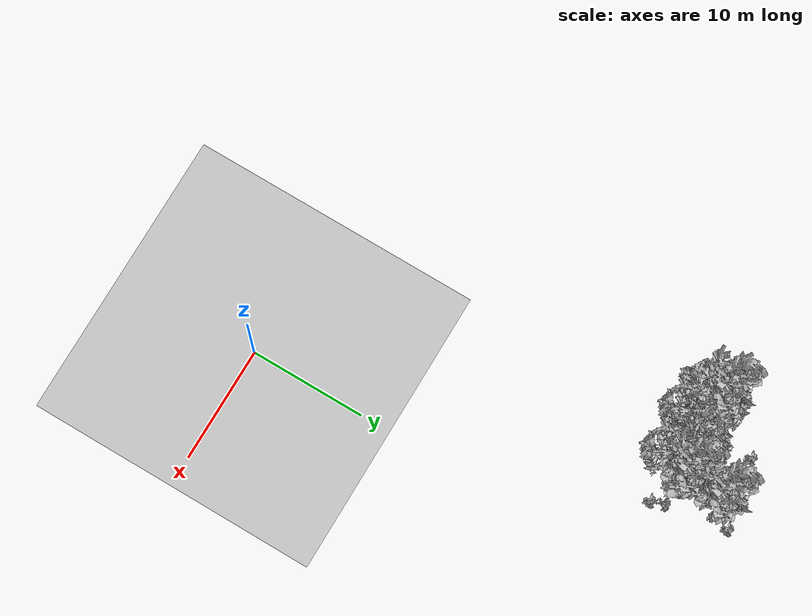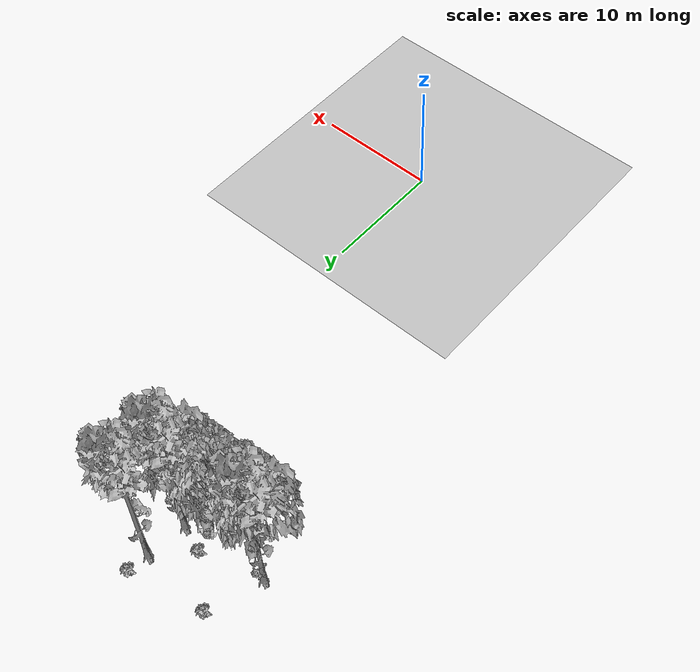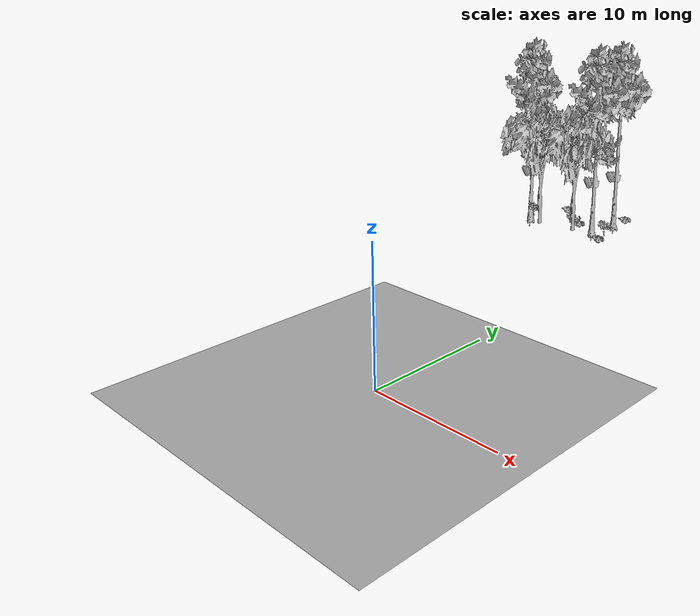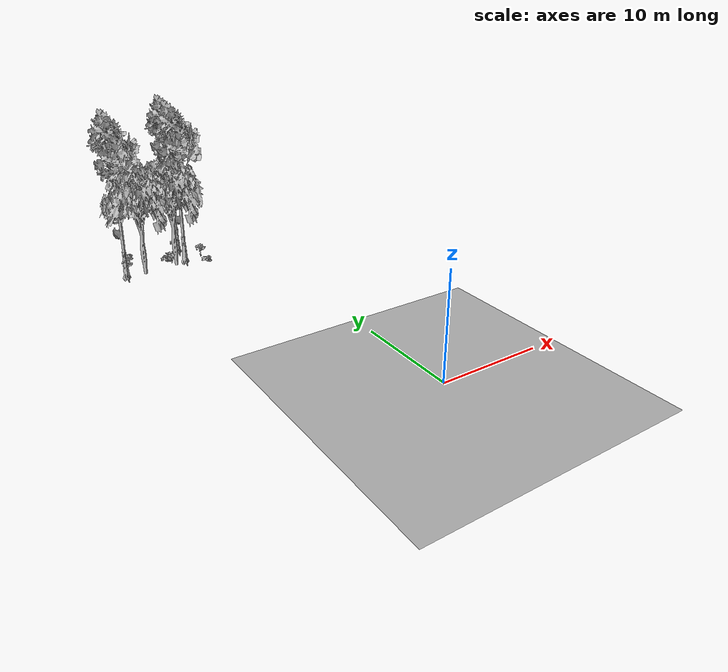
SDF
<sdf version="1.7">
 <world name="default">
  <model name="ground_plane">
   <static>1</static>
   <link name="link">
    <collision name="collision">
     <pose>-50 0 0 0 -0 0</pose>
     <geometry><plane><normal>0 0 1</normal><size>80 80</size></plane></geometry>
     <surface><contact><ode><min_depth>0.01</min_depth><max_vel>0</max_vel></ode></contact></surface>
    </collision>
    <visual name="grass">
     <cast_shadows>0</cast_shadows>
     <geometry>
      <mesh>
       <scale>0.46714285714285714 0.46714285714285714 0.1</scale>
       <uri>file://grass_plane/meshes/grass_plane.dae</uri>
      </mesh>
     </geometry>
    </visual>
   </link>
  </model>
  <model name="Tree 95">
   <static>1</static>
   <pose>-7.6605626062395125 34.817201030366704 0 1.57079 -0 0</pose>
   <link name="link">
    <collision name="collision">
     <geometry><mesh><scale>3.5 5 3.5</scale><uri>model://tree_9/meshes/tree_9.obj</uri></mesh></geometry>
    </collision>
    <visual name="visual">
     <geometry><mesh><scale>3.5 5 3.5</scale><uri>model://tree_9/meshes/tree_9.obj</uri></mesh></geometry>
    </visual>
   </link>
  </model>
  <model name="Tree 348">
   <static>1</static>
   <pose>-12.753537714318895 33.242959246885974 0 1.57079 -0 0</pose>
   <link name="link">
    <collision name="collision">
     <geometry><mesh><scale>3.5 5 3.5</scale><uri>model://tree_2/meshes/tree_2.obj</uri></mesh></geometry>
    </collision>
    <visual name="visual">
     <geometry><mesh><scale>3.5 5 3.5</scale><uri>model://tree_2/meshes/tree_2.obj</uri></mesh></geometry>
    </visual>
   </link>
  </model>
  <model name="Tree 367">
   <static>1</static>
   <pose>-14.457087193177394 34.1545571695556 0 1.57079 -0 0</pose>
   <link name="link">
    <collision name="collision">
     <geometry><mesh><scale>3.5 5 3.5</scale><uri>model://tree_9/meshes/tree_9.obj</uri></mesh></geometry>
    </collision>
    <visual name="visual">
     <geometry><mesh><scale>3.5 5 3.5</scale><uri>model://tree_9/meshes/tree_9.obj</uri></mesh></geometry>
    </visual>
   </link>
  </model>
  <model name="Tree 395">
   <static>1</static>
   <pose>-9.170375423383753 33.66462308272932 0 1.57079 -0 0</pose>
   <link name="link">
    <collision name="collision">
     <geometry><mesh><scale>3.5 5 3.5</scale><uri>model://tree_2/meshes/tree_2.obj</uri></mesh></geometry>
    </collision>
    <visual name="visual">
     <geometry><mesh><scale>3.5 5 3.5</scale><uri>model://tree_2/meshes/tree_2.obj</uri></mesh></geometry>
    </visual>
   </link>
  </model>
  <model name="Tree 500">
   <static>1</static>
   <pose>-7.2876599949074325 37.90536578268727 0 1.57079 -0 0</pose>
   <link name="link">
    <collision name="collision">
     <geometry><mesh><scale>3.5 5 3.5</scale><uri>model://tree_9/meshes/tree_9.obj</uri></mesh></geometry>
    </collision>
    <visual name="visual">
     <geometry><mesh><scale>3.5 5 3.5</scale><uri>model://tree_9/meshes/tree_9.obj</uri></mesh></geometry>
    </visual>
   </link>
  </model>
  <model name="Bush 9">
   <static>1</static>
   <pose>-14.190664253253772 34.36811682936843 0 1.57079 -0 0</pose>
   <link name="link">
    <collision name="collision">
     <geometry><mesh><scale>2 2 2</scale><uri>model://bush_5/meshes/bush_5.obj</uri></mesh></geometry>
     <surface><contact><collide_without_contact>false</collide_without_contact></contact></surface>
    </collision>
    <visual name="visual">
     <geometry><mesh><scale>2 2 2</scale><uri>model://bush_5/meshes/bush_5.obj</uri></mesh></geometry>
    </visual>
   </link>
  </model>
  <model name="Bush 44">
   <static>1</static>
   <pose>-12.946312828674877 38.26259945977934 0 1.57079 -0 0</pose>
   <link name="link">
    <collision name="collision">
     <geometry><mesh><scale>2 2 2</scale><uri>model://bush_2/meshes/bush_2.obj</uri></mesh></geometry>
     <surface><contact><collide_without_contact>false</collide_without_contact></contact></surface>
    </collision>
    <visual name="visual">
     <geometry><mesh><scale>2 2 2</scale><uri>model://bush_2/meshes/bush_2.obj</uri></mesh></geometry>
    </visual>
   </link>
  </model>
  <model name="Bush 178">
   <static>1</static>
   <pose>-5.97932043592639 34.34131509458817 0 1.57079 -0 0</pose>
   <link name="link">
    <collision name="collision">
     <geometry><mesh><scale>2 2 2</scale><uri>model://bush_5/meshes/bush_5.obj</uri></mesh></geometry>
     <surface><contact><collide_without_contact>false</collide_without_contact></contact></surface>
    </collision>
    <visual name="visual">
     <geometry><mesh><scale>2 2 2</scale><uri>model://bush_5/meshes/bush_5.obj</uri></mesh></geometry>
    </visual>
   </link>
  </model>
  <model name="Bush 205">
   <static>1</static>
   <pose>-7.022585486798825 39.4710683195072 0 1.57079 -0 0</pose>
   <link name="link">
    <collision name="collision">
     <geometry><mesh><scale>2 2 2</scale><uri>model://bush_2/meshes/bush_2.obj</uri></mesh></geometry>
     <surface><contact><collide_without_contact>false</collide_without_contact></contact></surface>
    </collision>
    <visual name="visual">
     <geometry><mesh><scale>2 2 2</scale><uri>model://bush_2/meshes/bush_2.obj</uri></mesh></geometry>
    </visual>
   </link>
  </model>
  <model name="Bush 227">
   <static>1</static>
   <pose>-9.389507830271086 34.31837629280287 0 1.57079 -0 0</pose>
   <link name="link">
    <collision name="collision">
     <geometry><mesh><scale>2 2 2</scale><uri>model://bush_0/meshes/bush_0.obj</uri></mesh></geometry>
     <surface><contact><collide_without_contact>false</collide_without_contact></contact></surface>
    </collision>
    <visual name="visual">
     <geometry><mesh><scale>2 2 2</scale><uri>model://bush_0/meshes/bush_0.obj</uri></mesh></geometry>
    </visual>
   </link>
  </model>
  <model name="Bush 334">
   <static>1</static>
   <pose>-5.834807230594031 33.08845764962095 0 1.57079 -0 0</pose>
   <link name="link">
    <collision name="collision">
     <geometry><mesh><scale>2 2 2</scale><uri>model://bush_2/meshes/bush_2.obj</uri></mesh></geometry>
     <surface><contact><collide_without_contact>false</collide_without_contact></contact></surface>
    </collision>
    <visual name="visual">
     <geometry><mesh><scale>2 2 2</scale><uri>model://bush_2/meshes/bush_2.obj</uri></mesh></geometry>
    </visual>
   </link>
  </model>
  <model name="Bush 527">
   <static>1</static>
   <pose>-9.635843571711245 35.45972524972551 0 1.57079 -0 0</pose>
   <link name="link">
    <collision name="collision">
     <geometry><mesh><scale>2 2 2</scale><uri>model://bush_2/meshes/bush_2.obj</uri></mesh></geometry>
     <surface><contact><collide_without_contact>false</collide_without_contact></contact></surface>
    </collision>
    <visual name="visual">
     <geometry><mesh><scale>2 2 2</scale><uri>model://bush_2/meshes/bush_2.obj</uri></mesh></geometry>
    </visual>
   </link>
  </model>
 </world>
</sdf>
